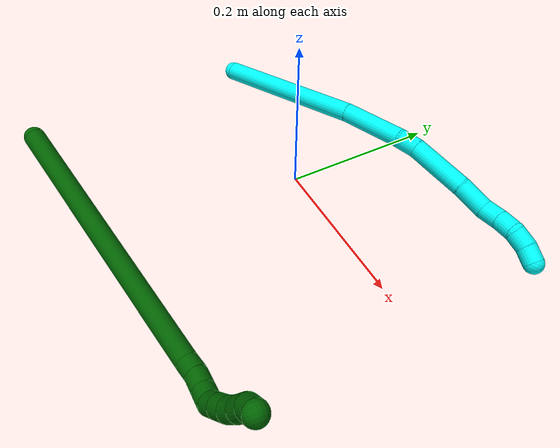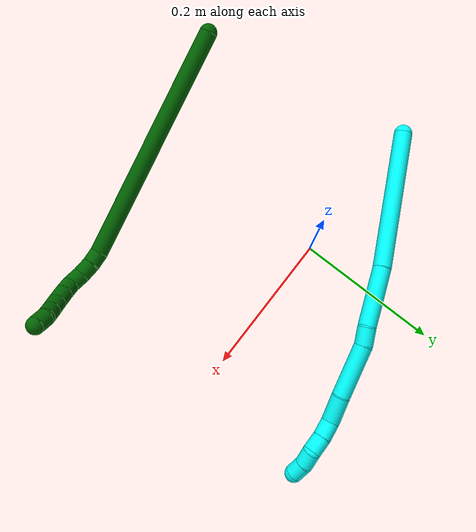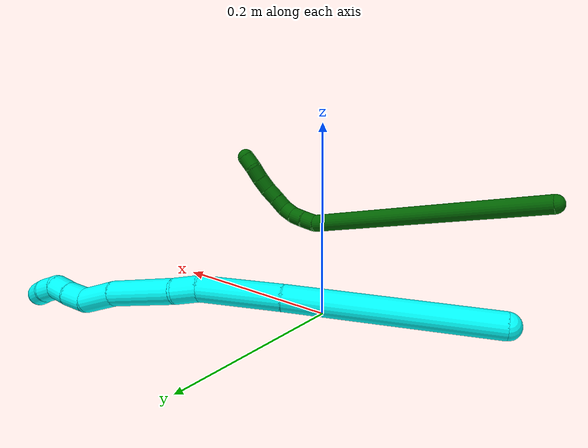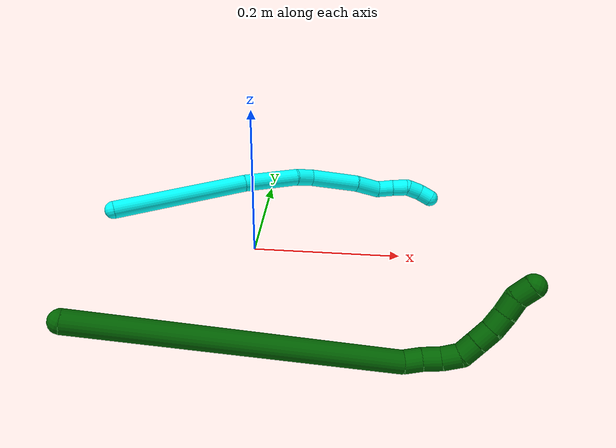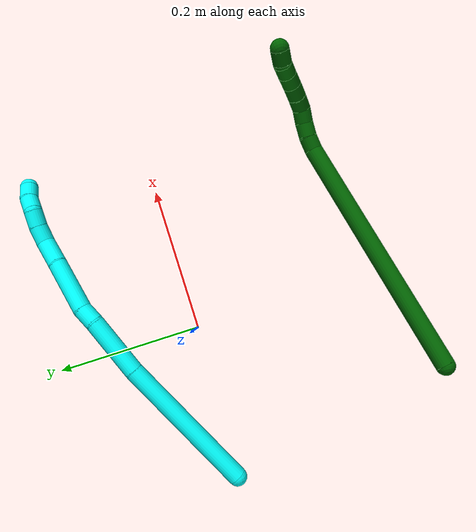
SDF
<sdf version="1.7">
 <world name="default">
  <model name="3">
   <static>0</static>
   <link name="3">
    <collision name="collision-cylinder-e_1_1_4">
     <pose>0.07109 0.065069 0.006093 -1.47742 0.827418 -0.760761</pose>
     <geometry><cylinder><radius>0.0125</radius><length>0.19313</length></cylinder></geometry>
     <surface>
      <friction><ode><mu>1.16</mu><mu2>1.16</mu2><slip1>0</slip1><slip2>0</slip2></ode></friction>
      <contact><ode><kp>1e+06</kp><kd>1</kd><max_vel>0</max_vel><min_depth>0.001</min_depth></ode></contact>
     </surface>
    </collision>
    <visual name="visual-cylinder-e_1_1_4">
     <pose>0.07109 0.065069 0.006093 -1.47742 0.827418 -0.760761</pose>
     <geometry><cylinder><radius>0.0125</radius><length>0.19313</length></cylinder></geometry>
     <material><ambient>0.003922 1 0.996078 1</ambient></material>
    </visual>
    <collision name="collision-cylinder-e_2_4_5">
     <pose>0.17306 0.156386 0.011017 -1.61534 0.865801 -0.900223</pose>
     <geometry><cylinder><radius>0.0125</radius><length>0.081093</length></cylinder></geometry>
     <surface>
      <friction><ode><mu>1.16</mu><mu2>1.16</mu2><slip1>0</slip1><slip2>0</slip2></ode></friction>
      <contact><ode><kp>1e+06</kp><kd>1</kd><max_vel>0</max_vel><min_depth>0.001</min_depth></ode></contact>
     </surface>
    </collision>
    <visual name="visual-cylinder-e_2_4_5">
     <pose>0.17306 0.156386 0.011017 -1.61534 0.865801 -0.900223</pose>
     <geometry><cylinder><radius>0.0125</radius><length>0.081093</length></cylinder></geometry>
     <material><ambient>0.003922 1 0.996078 1</ambient></material>
    </visual>
    <collision name="collision-cylinder-e_3_5_6">
     <pose>0.211894 0.192304 0.008285 -1.73095 0.682062 -0.789852</pose>
     <geometry><cylinder><radius>0.0125</radius><length>0.025233</length></cylinder></geometry>
     <surface>
      <friction><ode><mu>1.16</mu><mu2>1.16</mu2><slip1>0</slip1><slip2>0</slip2></ode></friction>
      <contact><ode><kp>1e+06</kp><kd>1</kd><max_vel>0</max_vel><min_depth>0.001</min_depth></ode></contact>
     </surface>
    </collision>
    <visual name="visual-cylinder-e_3_5_6">
     <pose>0.211894 0.192304 0.008285 -1.73095 0.682062 -0.789852</pose>
     <geometry><cylinder><radius>0.0125</radius><length>0.025233</length></cylinder></geometry>
     <material><ambient>0.003922 1 0.996078 1</ambient></material>
    </visual>
    <collision name="collision-cylinder-e_4_6_7">
     <pose>0.246817 0.225079 -0.003157 -1.97488 0.82068 -1.16559</pose>
     <geometry><cylinder><radius>0.0125</radius><length>0.073725</length></cylinder></geometry>
     <surface>
      <friction><ode><mu>1.16</mu><mu2>1.16</mu2><slip1>0</slip1><slip2>0</slip2></ode></friction>
      <contact><ode><kp>1e+06</kp><kd>1</kd><max_vel>0</max_vel><min_depth>0.001</min_depth></ode></contact>
     </surface>
    </collision>
    <visual name="visual-cylinder-e_4_6_7">
     <pose>0.246817 0.225079 -0.003157 -1.97488 0.82068 -1.16559</pose>
     <geometry><cylinder><radius>0.0125</radius><length>0.073725</length></cylinder></geometry>
     <material><ambient>0.003922 1 0.996078 1</ambient></material>
    </visual>
    <collision name="collision-cylinder-e_5_7_8">
     <pose>0.285723 0.261457 -0.019813 -2.04278 0.675417 -1.04145</pose>
     <geometry><cylinder><radius>0.0125</radius><length>0.038187</length></cylinder></geometry>
     <surface>
      <friction><ode><mu>1.16</mu><mu2>1.16</mu2><slip1>0</slip1><slip2>0</slip2></ode></friction>
      <contact><ode><kp>1e+06</kp><kd>1</kd><max_vel>0</max_vel><min_depth>0.001</min_depth></ode></contact>
     </surface>
    </collision>
    <visual name="visual-cylinder-e_5_7_8">
     <pose>0.285723 0.261457 -0.019813 -2.04278 0.675417 -1.04145</pose>
     <geometry><cylinder><radius>0.0125</radius><length>0.038187</length></cylinder></geometry>
     <material><ambient>0.003922 1 0.996078 1</ambient></material>
    </visual>
    <collision name="collision-cylinder-e_6_8_9">
     <pose>0.308468 0.280002 -0.027885 -1.81205 1.10517 -1.33326</pose>
     <geometry><cylinder><radius>0.0125</radius><length>0.02419</length></cylinder></geometry>
     <surface>
      <friction><ode><mu>1.16</mu><mu2>1.16</mu2><slip1>0</slip1><slip2>0</slip2></ode></friction>
      <contact><ode><kp>1e+06</kp><kd>1</kd><max_vel>0</max_vel><min_depth>0.001</min_depth></ode></contact>
     </surface>
    </collision>
    <visual name="visual-cylinder-e_6_8_9">
     <pose>0.308468 0.280002 -0.027885 -1.81205 1.10517 -1.33326</pose>
     <geometry><cylinder><radius>0.0125</radius><length>0.02419</length></cylinder></geometry>
     <material><ambient>0.003922 1 0.996078 1</ambient></material>
    </visual>
    <collision name="collision-cylinder-e_7_9_10">
     <pose>0.32992 0.289037 -0.031145 -2.0517 1.19153 -1.68246</pose>
     <geometry><cylinder><radius>0.0125</radius><length>0.022917</length></cylinder></geometry>
     <surface>
      <friction><ode><mu>1.16</mu><mu2>1.16</mu2><slip1>0</slip1><slip2>0</slip2></ode></friction>
      <contact><ode><kp>1e+06</kp><kd>1</kd><max_vel>0</max_vel><min_depth>0.001</min_depth></ode></contact>
     </surface>
    </collision>
    <visual name="visual-cylinder-e_7_9_10">
     <pose>0.32992 0.289037 -0.031145 -2.0517 1.19153 -1.68246</pose>
     <geometry><cylinder><radius>0.0125</radius><length>0.022917</length></cylinder></geometry>
     <material><ambient>0.003922 1 0.996078 1</ambient></material>
    </visual>
    <collision name="collision-cylinder-e_8_10_11">
     <pose>0.347467 0.299094 -0.038099 -2.24117 0.709738 -1.3082</pose>
     <geometry><cylinder><radius>0.0125</radius><length>0.021184</length></cylinder></geometry>
     <surface>
      <friction><ode><mu>1.16</mu><mu2>1.16</mu2><slip1>0</slip1><slip2>0</slip2></ode></friction>
      <contact><ode><kp>1e+06</kp><kd>1</kd><max_vel>0</max_vel><min_depth>0.001</min_depth></ode></contact>
     </surface>
    </collision>
    <visual name="visual-cylinder-e_8_10_11">
     <pose>0.347467 0.299094 -0.038099 -2.24117 0.709738 -1.3082</pose>
     <geometry><cylinder><radius>0.0125</radius><length>0.021184</length></cylinder></geometry>
     <material><ambient>0.003922 1 0.996078 1</ambient></material>
    </visual>
    <collision name="collision-cylinder-e_9_11_2">
     <pose>0.360877 0.309691 -0.049617 -2.55883 0.694313 -1.75731</pose>
     <geometry><cylinder><radius>0.0125</radius><length>0.02034</length></cylinder></geometry>
     <surface>
      <friction><ode><mu>1.16</mu><mu2>1.16</mu2><slip1>0</slip1><slip2>0</slip2></ode></friction>
      <contact><ode><kp>1e+06</kp><kd>1</kd><max_vel>0</max_vel><min_depth>0.001</min_depth></ode></contact>
     </surface>
    </collision>
    <visual name="visual-cylinder-e_9_11_2">
     <pose>0.360877 0.309691 -0.049617 -2.55883 0.694313 -1.75731</pose>
     <geometry><cylinder><radius>0.0125</radius><length>0.02034</length></cylinder></geometry>
     <material><ambient>0.003922 1 0.996078 1</ambient></material>
    </visual>
    <collision name="collision-sphere-2">
     <pose>0.367384 0.313992 -0.056143 0 -0 0</pose>
     <geometry><sphere><radius>0.0125</radius></sphere></geometry>
     <surface>
      <friction><ode><mu>1.16</mu><mu2>1.16</mu2><slip1>0</slip1><slip2>0</slip2></ode></friction>
      <contact><ode><kp>1e+06</kp><kd>1</kd><max_vel>0</max_vel><min_depth>0.001</min_depth></ode></contact>
     </surface>
    </collision>
    <visual name="visual-sphere-2">
     <pose>0.367384 0.313992 -0.056143 0 -0 0</pose>
     <geometry><sphere><radius>0.0125</radius></sphere></geometry>
     <material><ambient>0.003922 1 0.996078 1</ambient></material>
    </visual>
    <collision name="collision-sphere-11">
     <pose>0.354369 0.30539 -0.043091 0 -0 0</pose>
     <geometry><sphere><radius>0.0125</radius></sphere></geometry>
     <surface>
      <friction><ode><mu>1.16</mu><mu2>1.16</mu2><slip1>0</slip1><slip2>0</slip2></ode></friction>
      <contact><ode><kp>1e+06</kp><kd>1</kd><max_vel>0</max_vel><min_depth>0.001</min_depth></ode></contact>
     </surface>
    </collision>
    <visual name="visual-sphere-11">
     <pose>0.354369 0.30539 -0.043091 0 -0 0</pose>
     <geometry><sphere><radius>0.0125</radius></sphere></geometry>
     <material><ambient>0.003922 1 0.996078 1</ambient></material>
    </visual>
    <collision name="collision-sphere-10">
     <pose>0.340565 0.292798 -0.033108 0 -0 0</pose>
     <geometry><sphere><radius>0.0125</radius></sphere></geometry>
     <surface>
      <friction><ode><mu>1.16</mu><mu2>1.16</mu2><slip1>0</slip1><slip2>0</slip2></ode></friction>
      <contact><ode><kp>1e+06</kp><kd>1</kd><max_vel>0</max_vel><min_depth>0.001</min_depth></ode></contact>
     </surface>
    </collision>
    <visual name="visual-sphere-10">
     <pose>0.340565 0.292798 -0.033108 0 -0 0</pose>
     <geometry><sphere><radius>0.0125</radius></sphere></geometry>
     <material><ambient>0.003922 1 0.996078 1</ambient></material>
    </visual>
    <collision name="collision-sphere-9">
     <pose>0.319276 0.285276 -0.029183 0 -0 0</pose>
     <geometry><sphere><radius>0.0125</radius></sphere></geometry>
     <surface>
      <friction><ode><mu>1.16</mu><mu2>1.16</mu2><slip1>0</slip1><slip2>0</slip2></ode></friction>
      <contact><ode><kp>1e+06</kp><kd>1</kd><max_vel>0</max_vel><min_depth>0.001</min_depth></ode></contact>
     </surface>
    </collision>
    <visual name="visual-sphere-9">
     <pose>0.319276 0.285276 -0.029183 0 -0 0</pose>
     <geometry><sphere><radius>0.0125</radius></sphere></geometry>
     <material><ambient>0.003922 1 0.996078 1</ambient></material>
    </visual>
    <collision name="collision-sphere-4">
     <pose>0.14218 0.130137 0.012187 0 -0 0</pose>
     <geometry><sphere><radius>0.0125</radius></sphere></geometry>
     <surface>
      <friction><ode><mu>1.16</mu><mu2>1.16</mu2><slip1>0</slip1><slip2>0</slip2></ode></friction>
      <contact><ode><kp>1e+06</kp><kd>1</kd><max_vel>0</max_vel><min_depth>0.001</min_depth></ode></contact>
     </surface>
    </collision>
    <visual name="visual-sphere-4">
     <pose>0.14218 0.130137 0.012187 0 -0 0</pose>
     <geometry><sphere><radius>0.0125</radius></sphere></geometry>
     <material><ambient>0.003922 1 0.996078 1</ambient></material>
    </visual>
    <collision name="collision-sphere-1">
     <geometry><sphere><radius>0.0125</radius></sphere></geometry>
     <surface>
      <friction><ode><mu>1.16</mu><mu2>1.16</mu2><slip1>0</slip1><slip2>0</slip2></ode></friction>
      <contact><ode><kp>1e+06</kp><kd>1</kd><max_vel>0</max_vel><min_depth>0.001</min_depth></ode></contact>
     </surface>
    </collision>
    <visual name="visual-sphere-1">
     <geometry><sphere><radius>0.0125</radius></sphere></geometry>
     <material><ambient>0.003922 1 0.996078 1</ambient></material>
    </visual>
    <collision name="collision-sphere-8">
     <pose>0.297661 0.274729 -0.026588 0 -0 0</pose>
     <geometry><sphere><radius>0.0125</radius></sphere></geometry>
     <surface>
      <friction><ode><mu>1.16</mu><mu2>1.16</mu2><slip1>0</slip1><slip2>0</slip2></ode></friction>
      <contact><ode><kp>1e+06</kp><kd>1</kd><max_vel>0</max_vel><min_depth>0.001</min_depth></ode></contact>
     </surface>
    </collision>
    <visual name="visual-sphere-8">
     <pose>0.297661 0.274729 -0.026588 0 -0 0</pose>
     <geometry><sphere><radius>0.0125</radius></sphere></geometry>
     <material><ambient>0.003922 1 0.996078 1</ambient></material>
    </visual>
    <collision name="collision-sphere-5">
     <pose>0.203941 0.182635 0.009847 0 -0 0</pose>
     <geometry><sphere><radius>0.0125</radius></sphere></geometry>
     <surface>
      <friction><ode><mu>1.16</mu><mu2>1.16</mu2><slip1>0</slip1><slip2>0</slip2></ode></friction>
      <contact><ode><kp>1e+06</kp><kd>1</kd><max_vel>0</max_vel><min_depth>0.001</min_depth></ode></contact>
     </surface>
    </collision>
    <visual name="visual-sphere-5">
     <pose>0.203941 0.182635 0.009847 0 -0 0</pose>
     <geometry><sphere><radius>0.0125</radius></sphere></geometry>
     <material><ambient>0.003922 1 0.996078 1</ambient></material>
    </visual>
    <collision name="collision-sphere-6">
     <pose>0.219848 0.201972 0.006723 0 -0 0</pose>
     <geometry><sphere><radius>0.0125</radius></sphere></geometry>
     <surface>
      <friction><ode><mu>1.16</mu><mu2>1.16</mu2><slip1>0</slip1><slip2>0</slip2></ode></friction>
      <contact><ode><kp>1e+06</kp><kd>1</kd><max_vel>0</max_vel><min_depth>0.001</min_depth></ode></contact>
     </surface>
    </collision>
    <visual name="visual-sphere-6">
     <pose>0.219848 0.201972 0.006723 0 -0 0</pose>
     <geometry><sphere><radius>0.0125</radius></sphere></geometry>
     <material><ambient>0.003922 1 0.996078 1</ambient></material>
    </visual>
    <collision name="collision-sphere-7">
     <pose>0.273786 0.248185 -0.013038 0 -0 0</pose>
     <geometry><sphere><radius>0.0125</radius></sphere></geometry>
     <surface>
      <friction><ode><mu>1.16</mu><mu2>1.16</mu2><slip1>0</slip1><slip2>0</slip2></ode></friction>
      <contact><ode><kp>1e+06</kp><kd>1</kd><max_vel>0</max_vel><min_depth>0.001</min_depth></ode></contact>
     </surface>
    </collision>
    <visual name="visual-sphere-7">
     <pose>0.273786 0.248185 -0.013038 0 -0 0</pose>
     <geometry><sphere><radius>0.0125</radius></sphere></geometry>
     <material><ambient>0.003922 1 0.996078 1</ambient></material>
    </visual>
    <inertial>
     <pose>0.183884 0.165423 -0.00383 0 -0 0</pose>
     <mass>0.5</mass>
     <inertia><ixx>2e-05</ixx><ixy>0</ixy><ixz>0</ixz><iyy>8.4e-05</iyy><iyz>0</iyz><izz>-0.000998</izz></inertia>
    </inertial>
   </link>
   <pose>-0.199979 0.00695 0.047538 -0.493492 -0.408259 -0.205707</pose>
  </model>
  <model name="6">
   <static>0</static>
   <link name="6">
    <collision name="collision-cylinder-e_1_1_4">
     <pose>0.041514 -0.035098 0.161051 0.214577 0.246727 0.026707</pose>
     <geometry><cylinder><radius>0.0125</radius><length>0.339958</length></cylinder></geometry>
     <surface>
      <friction><ode><mu>1.16</mu><mu2>1.16</mu2><slip1>0</slip1><slip2>0</slip2></ode></friction>
      <contact><ode><kp>1e+06</kp><kd>1</kd><max_vel>0</max_vel><min_depth>0.001</min_depth></ode></contact>
     </surface>
    </collision>
    <visual name="visual-cylinder-e_1_1_4">
     <pose>0.041514 -0.035098 0.161051 0.214577 0.246727 0.026707</pose>
     <geometry><cylinder><radius>0.0125</radius><length>0.339958</length></cylinder></geometry>
     <material><ambient>0 0.392157 0.003922 1</ambient></material>
    </visual>
    <collision name="collision-cylinder-e_2_4_5">
     <pose>0.088662 -0.070677 0.330367 0.058112 0.597575 0.017904</pose>
     <geometry><cylinder><radius>0.0125</radius><length>0.020028</length></cylinder></geometry>
     <surface>
      <friction><ode><mu>1.16</mu><mu2>1.16</mu2><slip1>0</slip1><slip2>0</slip2></ode></friction>
      <contact><ode><kp>1e+06</kp><kd>1</kd><max_vel>0</max_vel><min_depth>0.001</min_depth></ode></contact>
     </surface>
    </collision>
    <visual name="visual-cylinder-e_2_4_5">
     <pose>0.088662 -0.070677 0.330367 0.058112 0.597575 0.017904</pose>
     <geometry><cylinder><radius>0.0125</radius><length>0.020028</length></cylinder></geometry>
     <material><ambient>0 0.392157 0.003922 1</ambient></material>
    </visual>
    <collision name="collision-cylinder-e_3_5_6">
     <pose>0.099327 -0.070295 0.347236 -0.100037 0.526914 -0.027004</pose>
     <geometry><cylinder><radius>0.0125</radius><length>0.020008</length></cylinder></geometry>
     <surface>
      <friction><ode><mu>1.16</mu><mu2>1.16</mu2><slip1>0</slip1><slip2>0</slip2></ode></friction>
      <contact><ode><kp>1e+06</kp><kd>1</kd><max_vel>0</max_vel><min_depth>0.001</min_depth></ode></contact>
     </surface>
    </collision>
    <visual name="visual-cylinder-e_3_5_6">
     <pose>0.099327 -0.070295 0.347236 -0.100037 0.526914 -0.027004</pose>
     <geometry><cylinder><radius>0.0125</radius><length>0.020008</length></cylinder></geometry>
     <material><ambient>0 0.392157 0.003922 1</ambient></material>
    </visual>
    <collision name="collision-cylinder-e_4_6_7">
     <pose>0.111038 -0.067637 0.363065 -0.243348 0.731336 -0.093569</pose>
     <geometry><cylinder><radius>0.0125</radius><length>0.020004</length></cylinder></geometry>
     <surface>
      <friction><ode><mu>1.16</mu><mu2>1.16</mu2><slip1>0</slip1><slip2>0</slip2></ode></friction>
      <contact><ode><kp>1e+06</kp><kd>1</kd><max_vel>0</max_vel><min_depth>0.001</min_depth></ode></contact>
     </surface>
    </collision>
    <visual name="visual-cylinder-e_4_6_7">
     <pose>0.111038 -0.067637 0.363065 -0.243348 0.731336 -0.093569</pose>
     <geometry><cylinder><radius>0.0125</radius><length>0.020004</length></cylinder></geometry>
     <material><ambient>0 0.392157 0.003922 1</ambient></material>
    </visual>
    <collision name="collision-cylinder-e_5_7_8">
     <pose>0.127138 -0.065355 0.373613 -0.146082 1.22828 -0.103094</pose>
     <geometry><cylinder><radius>0.0125</radius><length>0.020001</length></cylinder></geometry>
     <surface>
      <friction><ode><mu>1.16</mu><mu2>1.16</mu2><slip1>0</slip1><slip2>0</slip2></ode></friction>
      <contact><ode><kp>1e+06</kp><kd>1</kd><max_vel>0</max_vel><min_depth>0.001</min_depth></ode></contact>
     </surface>
    </collision>
    <visual name="visual-cylinder-e_5_7_8">
     <pose>0.127138 -0.065355 0.373613 -0.146082 1.22828 -0.103094</pose>
     <geometry><cylinder><radius>0.0125</radius><length>0.020001</length></cylinder></geometry>
     <material><ambient>0 0.392157 0.003922 1</ambient></material>
    </visual>
    <collision name="collision-cylinder-e_6_8_9">
     <pose>0.145971 -0.064651 0.380304 -0.063519 1.22654 -0.044712</pose>
     <geometry><cylinder><radius>0.0125</radius><length>0.02</length></cylinder></geometry>
     <surface>
      <friction><ode><mu>1.16</mu><mu2>1.16</mu2><slip1>0</slip1><slip2>0</slip2></ode></friction>
      <contact><ode><kp>1e+06</kp><kd>1</kd><max_vel>0</max_vel><min_depth>0.001</min_depth></ode></contact>
     </surface>
    </collision>
    <visual name="visual-cylinder-e_6_8_9">
     <pose>0.145971 -0.064651 0.380304 -0.063519 1.22654 -0.044712</pose>
     <geometry><cylinder><radius>0.0125</radius><length>0.02</length></cylinder></geometry>
     <material><ambient>0 0.392157 0.003922 1</ambient></material>
    </visual>
    <collision name="collision-cylinder-e_7_9_10">
     <pose>0.165234 -0.064331 0.385401 -0.061206 1.39676 -0.051388</pose>
     <geometry><cylinder><radius>0.0125</radius><length>0.02</length></cylinder></geometry>
     <surface>
      <friction><ode><mu>1.16</mu><mu2>1.16</mu2><slip1>0</slip1><slip2>0</slip2></ode></friction>
      <contact><ode><kp>1e+06</kp><kd>1</kd><max_vel>0</max_vel><min_depth>0.001</min_depth></ode></contact>
     </surface>
    </collision>
    <visual name="visual-cylinder-e_7_9_10">
     <pose>0.165234 -0.064331 0.385401 -0.061206 1.39676 -0.051388</pose>
     <geometry><cylinder><radius>0.0125</radius><length>0.02</length></cylinder></geometry>
     <material><ambient>0 0.392157 0.003922 1</ambient></material>
    </visual>
    <collision name="collision-cylinder-e_8_10_11">
     <pose>0.185044 -0.063783 0.387884 -0.529814 1.48323 -0.487149</pose>
     <geometry><cylinder><radius>0.0125</radius><length>0.02</length></cylinder></geometry>
     <surface>
      <friction><ode><mu>1.16</mu><mu2>1.16</mu2><slip1>0</slip1><slip2>0</slip2></ode></friction>
      <contact><ode><kp>1e+06</kp><kd>1</kd><max_vel>0</max_vel><min_depth>0.001</min_depth></ode></contact>
     </surface>
    </collision>
    <visual name="visual-cylinder-e_8_10_11">
     <pose>0.185044 -0.063783 0.387884 -0.529814 1.48323 -0.487149</pose>
     <geometry><cylinder><radius>0.0125</radius><length>0.02</length></cylinder></geometry>
     <material><ambient>0 0.392157 0.003922 1</ambient></material>
    </visual>
    <collision name="collision-cylinder-e_9_11_2">
     <pose>0.203996 -0.061261 0.392492 -0.494961 1.11746 -0.31333</pose>
     <geometry><cylinder><radius>0.0125</radius><length>0.02</length></cylinder></geometry>
     <surface>
      <friction><ode><mu>1.16</mu><mu2>1.16</mu2><slip1>0</slip1><slip2>0</slip2></ode></friction>
      <contact><ode><kp>1e+06</kp><kd>1</kd><max_vel>0</max_vel><min_depth>0.001</min_depth></ode></contact>
     </surface>
    </collision>
    <visual name="visual-cylinder-e_9_11_2">
     <pose>0.203996 -0.061261 0.392492 -0.494961 1.11746 -0.31333</pose>
     <geometry><cylinder><radius>0.0125</radius><length>0.02</length></cylinder></geometry>
     <material><ambient>0 0.392157 0.003922 1</ambient></material>
    </visual>
    <collision name="collision-sphere-2">
     <pose>0.212986 -0.059181 0.396346 0 -0 0</pose>
     <geometry><sphere><radius>0.0125</radius></sphere></geometry>
     <surface>
      <friction><ode><mu>1.16</mu><mu2>1.16</mu2><slip1>0</slip1><slip2>0</slip2></ode></friction>
      <contact><ode><kp>1e+06</kp><kd>1</kd><max_vel>0</max_vel><min_depth>0.001</min_depth></ode></contact>
     </surface>
    </collision>
    <visual name="visual-sphere-2">
     <pose>0.212986 -0.059181 0.396346 0 -0 0</pose>
     <geometry><sphere><radius>0.0125</radius></sphere></geometry>
     <material><ambient>0 0.392157 0.003922 1</ambient></material>
    </visual>
    <collision name="collision-sphere-11">
     <pose>0.195006 -0.063341 0.388638 0 -0 0</pose>
     <geometry><sphere><radius>0.0125</radius></sphere></geometry>
     <surface>
      <friction><ode><mu>1.16</mu><mu2>1.16</mu2><slip1>0</slip1><slip2>0</slip2></ode></friction>
      <contact><ode><kp>1e+06</kp><kd>1</kd><max_vel>0</max_vel><min_depth>0.001</min_depth></ode></contact>
     </surface>
    </collision>
    <visual name="visual-sphere-11">
     <pose>0.195006 -0.063341 0.388638 0 -0 0</pose>
     <geometry><sphere><radius>0.0125</radius></sphere></geometry>
     <material><ambient>0 0.392157 0.003922 1</ambient></material>
    </visual>
    <collision name="collision-sphere-10">
     <pose>0.175083 -0.064225 0.387129 0 -0 0</pose>
     <geometry><sphere><radius>0.0125</radius></sphere></geometry>
     <surface>
      <friction><ode><mu>1.16</mu><mu2>1.16</mu2><slip1>0</slip1><slip2>0</slip2></ode></friction>
      <contact><ode><kp>1e+06</kp><kd>1</kd><max_vel>0</max_vel><min_depth>0.001</min_depth></ode></contact>
     </surface>
    </collision>
    <visual name="visual-sphere-10">
     <pose>0.175083 -0.064225 0.387129 0 -0 0</pose>
     <geometry><sphere><radius>0.0125</radius></sphere></geometry>
     <material><ambient>0 0.392157 0.003922 1</ambient></material>
    </visual>
    <collision name="collision-sphere-9">
     <pose>0.155384 -0.064437 0.383672 0 -0 0</pose>
     <geometry><sphere><radius>0.0125</radius></sphere></geometry>
     <surface>
      <friction><ode><mu>1.16</mu><mu2>1.16</mu2><slip1>0</slip1><slip2>0</slip2></ode></friction>
      <contact><ode><kp>1e+06</kp><kd>1</kd><max_vel>0</max_vel><min_depth>0.001</min_depth></ode></contact>
     </surface>
    </collision>
    <visual name="visual-sphere-9">
     <pose>0.155384 -0.064437 0.383672 0 -0 0</pose>
     <geometry><sphere><radius>0.0125</radius></sphere></geometry>
     <material><ambient>0 0.392157 0.003922 1</ambient></material>
    </visual>
    <collision name="collision-sphere-4">
     <pose>0.083028 -0.070197 0.322103 0 -0 0</pose>
     <geometry><sphere><radius>0.0125</radius></sphere></geometry>
     <surface>
      <friction><ode><mu>1.16</mu><mu2>1.16</mu2><slip1>0</slip1><slip2>0</slip2></ode></friction>
      <contact><ode><kp>1e+06</kp><kd>1</kd><max_vel>0</max_vel><min_depth>0.001</min_depth></ode></contact>
     </surface>
    </collision>
    <visual name="visual-sphere-4">
     <pose>0.083028 -0.070197 0.322103 0 -0 0</pose>
     <geometry><sphere><radius>0.0125</radius></sphere></geometry>
     <material><ambient>0 0.392157 0.003922 1</ambient></material>
    </visual>
    <collision name="collision-sphere-1">
     <geometry><sphere><radius>0.0125</radius></sphere></geometry>
     <surface>
      <friction><ode><mu>1.16</mu><mu2>1.16</mu2><slip1>0</slip1><slip2>0</slip2></ode></friction>
      <contact><ode><kp>1e+06</kp><kd>1</kd><max_vel>0</max_vel><min_depth>0.001</min_depth></ode></contact>
     </surface>
    </collision>
    <visual name="visual-sphere-1">
     <geometry><sphere><radius>0.0125</radius></sphere></geometry>
     <material><ambient>0 0.392157 0.003922 1</ambient></material>
    </visual>
    <collision name="collision-sphere-8">
     <pose>0.136558 -0.064866 0.376936 0 -0 0</pose>
     <geometry><sphere><radius>0.0125</radius></sphere></geometry>
     <surface>
      <friction><ode><mu>1.16</mu><mu2>1.16</mu2><slip1>0</slip1><slip2>0</slip2></ode></friction>
      <contact><ode><kp>1e+06</kp><kd>1</kd><max_vel>0</max_vel><min_depth>0.001</min_depth></ode></contact>
     </surface>
    </collision>
    <visual name="visual-sphere-8">
     <pose>0.136558 -0.064866 0.376936 0 -0 0</pose>
     <geometry><sphere><radius>0.0125</radius></sphere></geometry>
     <material><ambient>0 0.392157 0.003922 1</ambient></material>
    </visual>
    <collision name="collision-sphere-5">
     <pose>0.094297 -0.071158 0.338632 0 -0 0</pose>
     <geometry><sphere><radius>0.0125</radius></sphere></geometry>
     <surface>
      <friction><ode><mu>1.16</mu><mu2>1.16</mu2><slip1>0</slip1><slip2>0</slip2></ode></friction>
      <contact><ode><kp>1e+06</kp><kd>1</kd><max_vel>0</max_vel><min_depth>0.001</min_depth></ode></contact>
     </surface>
    </collision>
    <visual name="visual-sphere-5">
     <pose>0.094297 -0.071158 0.338632 0 -0 0</pose>
     <geometry><sphere><radius>0.0125</radius></sphere></geometry>
     <material><ambient>0 0.392157 0.003922 1</ambient></material>
    </visual>
    <collision name="collision-sphere-6">
     <pose>0.104358 -0.069431 0.35584 0 -0 0</pose>
     <geometry><sphere><radius>0.0125</radius></sphere></geometry>
     <surface>
      <friction><ode><mu>1.16</mu><mu2>1.16</mu2><slip1>0</slip1><slip2>0</slip2></ode></friction>
      <contact><ode><kp>1e+06</kp><kd>1</kd><max_vel>0</max_vel><min_depth>0.001</min_depth></ode></contact>
     </surface>
    </collision>
    <visual name="visual-sphere-6">
     <pose>0.104358 -0.069431 0.35584 0 -0 0</pose>
     <geometry><sphere><radius>0.0125</radius></sphere></geometry>
     <material><ambient>0 0.392157 0.003922 1</ambient></material>
    </visual>
    <collision name="collision-sphere-7">
     <pose>0.117719 -0.065844 0.37029 0 -0 0</pose>
     <geometry><sphere><radius>0.0125</radius></sphere></geometry>
     <surface>
      <friction><ode><mu>1.16</mu><mu2>1.16</mu2><slip1>0</slip1><slip2>0</slip2></ode></friction>
      <contact><ode><kp>1e+06</kp><kd>1</kd><max_vel>0</max_vel><min_depth>0.001</min_depth></ode></contact>
     </surface>
    </collision>
    <visual name="visual-sphere-7">
     <pose>0.117719 -0.065844 0.37029 0 -0 0</pose>
     <geometry><sphere><radius>0.0125</radius></sphere></geometry>
     <material><ambient>0 0.392157 0.003922 1</ambient></material>
    </visual>
    <inertial>
     <pose>0.073291 -0.044989 0.227944 0 -0 0</pose>
     <mass>0.5</mass>
     <inertia>
      <ixx>0.003293</ixx>
      <ixy>0</ixy>
      <ixz>0</ixz>
      <iyy>0.003307</iyy>
      <iyz>0</iyz>
      <izz>-0.000103</izz>
     </inertia>
    </inertial>
   </link>
   <pose>-0.139592 -0.287701 0.082262 2.45427 -1.06098 0.642665</pose>
  </model>
 </world>
</sdf>
